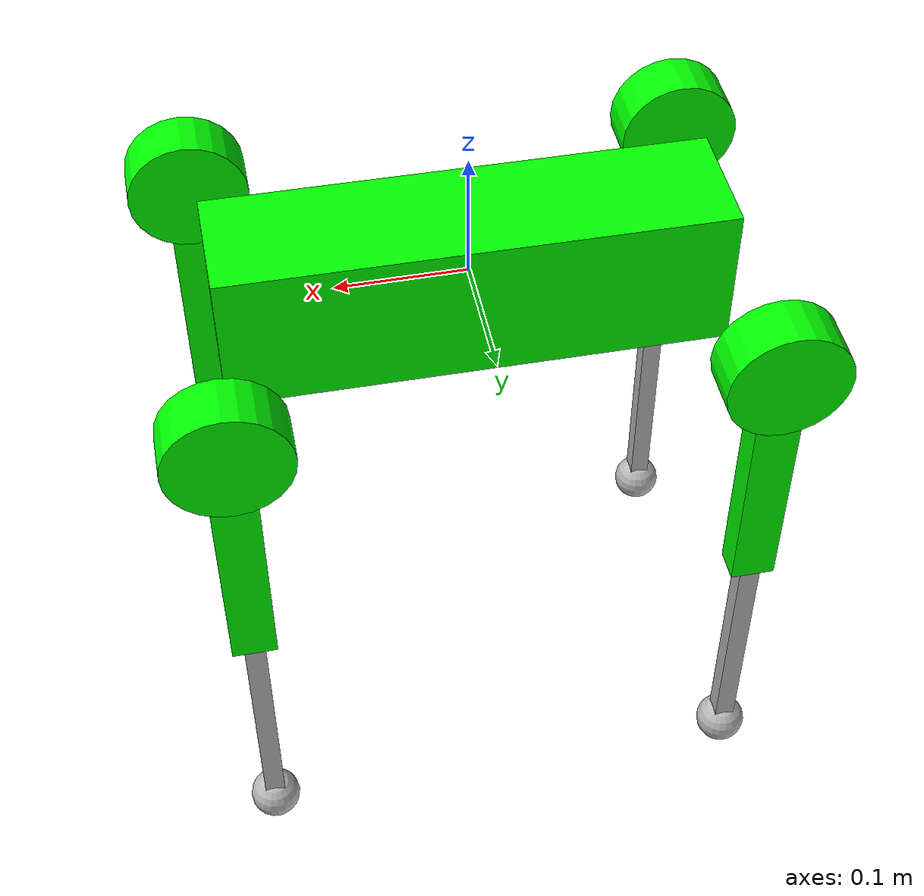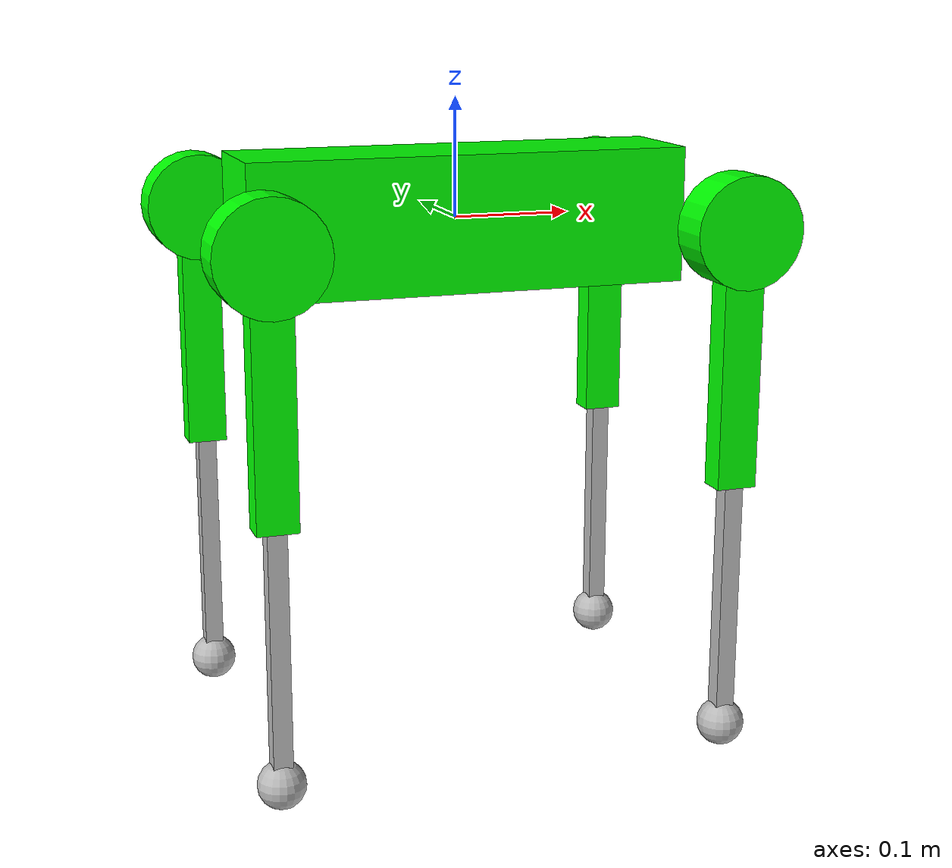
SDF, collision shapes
<sdf version='1.12'>
  <model name='go2'>
    <link name='base'>
      <inertial>
        <pose>0.020076415498763388 -1.1917583649194879e-19 -0.0051027873042044517 0 0 0</pose>
        <mass>7.2780000000000022</mass>
        <inertia>
          <ixx>0.025815203465732739</ixx>
          <ixy>0.00012166</ixy>
          <ixz>0.0015233596262671919</ixz>
          <iyy>0.1030543124481243</iyy>
          <iyz>-3.1199999999999993e-05</iyz>
          <izz>0.1127455974823915</izz>
        </inertia>
      </inertial>
      <collision name='base_fixed_joint_lump__trunk_collision'>
        <pose>0 0 0 0 0 0</pose>
        <geometry>
          <box>
            <size>0.37619999999999998 0.0935 0.114</size>
          </box>
        </geometry>
        <surface>
          <contact>
            <ode>
              <kp>1000000</kp>
              <kd>1</kd>
            </ode>
          </contact>
          <friction>
            <ode>
              <mu>0.20000000000000001</mu>
              <mu2>0.20000000000000001</mu2>
            </ode>
          </friction>
        </surface>
      </collision>
      <collision name='base_fixed_joint_lump__imu_link_collision_1'>
        <pose>0 0 0 0 0 0</pose>
        <geometry>
          <box>
            <size>0.001 0.001 0.001</size>
          </box>
        </geometry>
        <surface>
          <contact>
            <ode/>
          </contact>
          <friction>
            <ode>
              <mu>0.20000000000000001</mu>
              <mu2>0.20000000000000001</mu2>
            </ode>
          </friction>
        </surface>
      </collision>
      <visual name='base_visual'>
        <pose>0 0 0 0 0 0</pose>
        <geometry>
          <box>
            <size>0.001 0.001 0.001</size>
          </box>
        </geometry>
      </visual>
      <visual name='base_fixed_joint_lump__trunk_visual_1'>
        <pose>0 0 0 0 0 0</pose>
        <geometry>
          <mesh>
            <scale>1 1 1</scale>
            <uri>meshes/trunk.dae</uri>
          </mesh>
        </geometry>
      </visual>
      <visual name='base_fixed_joint_lump__FL_hip_rotor_visual_2'>
        <pose>0.11215 0.04675 0 0 1.5707963267948966 0</pose>
        <geometry>
          <cylinder>
            <length>0.02</length>
            <radius>0.035000000000000003</radius>
          </cylinder>
        </geometry>
        <material>
          <diffuse>0 1 0 1</diffuse>
          <ambient>0 1 0 1</ambient>
        </material>
      </visual>
      <visual name='base_fixed_joint_lump__FR_hip_rotor_visual_3'>
        <pose>0.11215 -0.04675 0 0 1.5707963267948966 0</pose>
        <geometry>
          <cylinder>
            <length>0.02</length>
            <radius>0.035000000000000003</radius>
          </cylinder>
        </geometry>
        <material>
          <diffuse>0 1 0 1</diffuse>
          <ambient>0 1 0 1</ambient>
        </material>
      </visual>
      <visual name='base_fixed_joint_lump__RL_hip_rotor_visual_4'>
        <pose>-0.11215 0.04675 0 0 1.5707963267948966 0</pose>
        <geometry>
          <cylinder>
            <length>0.02</length>
            <radius>0.035000000000000003</radius>
          </cylinder>
        </geometry>
        <material>
          <diffuse>0 1 0 1</diffuse>
          <ambient>0 1 0 1</ambient>
        </material>
      </visual>
      <visual name='base_fixed_joint_lump__RR_hip_rotor_visual_5'>
        <pose>-0.11215 -0.04675 0 0 1.5707963267948966 0</pose>
        <geometry>
          <cylinder>
            <length>0.02</length>
            <radius>0.035000000000000003</radius>
          </cylinder>
        </geometry>
        <material>
          <diffuse>0 1 0 1</diffuse>
          <ambient>0 1 0 1</ambient>
        </material>
      </visual>
      <visual name='base_fixed_joint_lump__imu_link_visual_6'>
        <pose>0 0 0 0 0 0</pose>
        <geometry>
          <box>
            <size>0.001 0.001 0.001</size>
          </box>
        </geometry>
      </visual>
      <gravity>true</gravity>
      <gravity>true</gravity>
      <sensor name="imu_sensor" type="imu">
          <always_on>1</always_on>
          <update_rate>200</update_rate>
          <visualize>true</visualize>
          <topic>imu</topic>
      </sensor>
    </link>
    <joint name='FL_hip_joint' type='revolute'>
      <pose relative_to='base'>0.19339999999999999 0.0465 0 0 0 0</pose>
      <parent>base</parent>
      <child>FL_hip</child>
      <axis>
        <xyz>1 0 0</xyz>
        <limit>
          <lower>-1.0471999999999999</lower>
          <upper>1.0471999999999999</upper>
          <effort>23.699999999999999</effort>
          <velocity>30.100000000000001</velocity>
        </limit>
        <dynamics>
          <damping>0</damping>
          <friction>0</friction>
          <spring_reference>0</spring_reference>
          <spring_stiffness>0</spring_stiffness>
        </dynamics>
      </axis>
    </joint>
    <link name='FL_hip'>
      <pose relative_to='FL_hip_joint'>0 0 0 0 0 0</pose>
      <inertial>
        <pose>-0.0047734028683181226 0.00169748370273794 -9.2816166883963517e-05 0 0 0</pose>
        <mass>0.76700000000000002</mass>
        <inertia>
          <ixx>0.00053999151781062584</ixx>
          <ixy>-2.1220993324641449e-06</ixy>
          <ixz>1.0653925501955671e-06</ixz>
          <iyy>0.00099813696478559337</iyy>
          <iyz>-1.4027352647979141e-06</iyz>
          <izz>0.00065828474786205991</izz>
        </inertia>
      </inertial>
      <collision name='FL_hip_collision'>
        <pose>0 0.095500000000000002 0 1.5707963267948959 0 0</pose>
        <geometry>
          <cylinder>
            <length>0.040000000000000001</length>
            <radius>0.045999999999999999</radius>
          </cylinder>
        </geometry>
        <surface>
          <contact>
            <ode/>
          </contact>
          <friction>
            <ode>
              <mu>0.20000000000000001</mu>
              <mu2>0.20000000000000001</mu2>
            </ode>
          </friction>
        </surface>
      </collision>
      <visual name='FL_hip_visual'>
        <pose>0 0 0 0 0 0</pose>
        <geometry>
          <mesh>
            <scale>1 1 1</scale>
            <uri>meshes/hip.dae</uri>
          </mesh>
        </geometry>
      </visual>
      <visual name='FL_hip_fixed_joint_lump__FL_thigh_rotor_visual_1'>
        <pose>0 -0.00014999999999999999 0 1.5707963267948959 0 0</pose>
        <geometry>
          <cylinder>
            <length>0.02</length>
            <radius>0.035000000000000003</radius>
          </cylinder>
        </geometry>
        <material>
          <diffuse>0 1 0 1</diffuse>
          <ambient>0 1 0 1</ambient>
        </material>
      </visual>
    </link>
    <joint name='FL_thigh_joint' type='revolute'>
      <pose relative_to='FL_hip'>0 0.095500000000000002 0 0 0 0</pose>
      <parent>FL_hip</parent>
      <child>FL_thigh</child>
      <axis>
        <xyz>0 1 0</xyz>
        <limit>
          <lower>-1.5708</lower>
          <upper>3.4906999999999999</upper>
          <effort>23.699999999999999</effort>
          <velocity>30.100000000000001</velocity>
        </limit>
        <dynamics>
          <damping>0</damping>
          <friction>0</friction>
          <spring_reference>0</spring_reference>
          <spring_stiffness>0</spring_stiffness>
        </dynamics>
      </axis>
    </joint>
    <link name='FL_thigh'>
      <pose relative_to='FL_thigh_joint'>0 0 0 0 0 0</pose>
      <inertial>
        <pose>-0.003471780821917808 -0.02302074939564867 -0.03035487510072523 0 0 0</pose>
        <mass>1.2410000000000001</mass>
        <inertia>
          <ixx>0.0059963333412087023</ixx>
          <ixy>9.0305334356164388e-05</ixy>
          <ixz>-0.00029910392372602731</ixz>
          <iyy>0.0060013394099700237</iyy>
          <iyz>0.00083515091803384382</iyz>
          <izz>0.0010991471651674461</izz>
        </inertia>
      </inertial>
      <collision name='FL_thigh_collision'>
        <pose>0 0 -0.1065 0 1.5707963267948966 0</pose>
        <geometry>
          <box>
            <size>0.21299999999999999 0.024500000000000001 0.034000000000000002</size>
          </box>
        </geometry>
        <surface>
          <contact>
            <ode>
              <kp>1000000</kp>
              <kd>1</kd>
            </ode>
          </contact>
          <friction>
            <ode>
              <mu>0.20000000000000001</mu>
              <mu2>0.20000000000000001</mu2>
            </ode>
          </friction>
        </surface>
      </collision>
      <visual name='FL_thigh_visual'>
        <pose>0 0 0 0 0 0</pose>
        <geometry>
          <mesh>
            <scale>1 1 1</scale>
            <uri>meshes/thigh.dae</uri>
          </mesh>
        </geometry>
      </visual>
      <visual name='FL_thigh_fixed_joint_lump__FL_calf_rotor_visual_1'>
        <pose>0 -0.032349999999999997 0 1.5707963267948959 0 0</pose>
        <geometry>
          <cylinder>
            <length>0.02</length>
            <radius>0.035000000000000003</radius>
          </cylinder>
        </geometry>
        <material>
          <diffuse>0 1 0 1</diffuse>
          <ambient>0 1 0 1</ambient>
        </material>
      </visual>
      <self_collide>true</self_collide>
    </link>
    <joint name='FL_calf_joint' type='revolute'>
      <pose relative_to='FL_thigh'>0 0 -0.21299999999999999 0 0 0</pose>
      <parent>FL_thigh</parent>
      <child>FL_calf</child>
      <axis>
        <xyz>0 1 0</xyz>
        <limit>
          <lower>-2.7227000000000001</lower>
          <upper>-0.83775999999999995</upper>
          <effort>35.549999999999997</effort>
          <velocity>20.059999999999999</velocity>
        </limit>
        <dynamics>
          <damping>0</damping>
          <friction>0</friction>
          <spring_reference>0</spring_reference>
          <spring_stiffness>0</spring_stiffness>
        </dynamics>
      </axis>
    </joint>
    <link name='FL_calf'>
      <pose relative_to='FL_calf_joint'>0 0 0 0 0 0</pose>
      <inertial>
        <pose>0.0039435514018691586 -0.00070163551401869158 -0.14247663551401871 0 0 0</pose>
        <mass>0.214</mass>
        <inertia>
          <ixx>0.001504318428855141</ixx>
          <ixy>5.7069775700934575e-07</ixy>
          <ixz>-5.9880822429906407e-06</ixz>
          <iyy>0.001525574022878506</iyy>
          <iyz>1.240561682242991e-05</iyz>
          <izz>4.3837685378504683e-05</izz>
        </inertia>
      </inertial>
      <collision name='FL_calf_collision'>
        <pose>0 0 -0.1065 0 1.5707963267948966 0</pose>
        <geometry>
          <box>
            <size>0.21299999999999999 0.016 0.016</size>
          </box>
        </geometry>
        <surface>
          <contact>
            <ode/>
          </contact>
          <friction>
            <ode>
              <mu>0.20000000000000001</mu>
              <mu2>0.20000000000000001</mu2>
            </ode>
          </friction>
        </surface>
      </collision>
      <collision name='FL_calf_fixed_joint_lump__FL_foot_collision_1'>
        <pose>0 0 -0.21299999999999999 0 0 0</pose>
        <geometry>
          <sphere>
            <radius>0.02</radius>
          </sphere>
        </geometry>
        <surface>
          <contact>
            <ode>
              <kp>1000000</kp>
              <kd>1</kd>
            </ode>
          </contact>
          <friction>
            <ode>
              <mu>0.59999999999999998</mu>
              <mu2>0.59999999999999998</mu2>
            </ode>
          </friction>
        </surface>
      </collision>
      <visual name='FL_calf_visual'>
        <pose>0 0 0 0 0 0</pose>
        <geometry>
          <mesh>
            <scale>1 1 1</scale>
            <uri>meshes/calf.dae</uri>
          </mesh>
        </geometry>
      </visual>
      <visual name='FL_calf_fixed_joint_lump__FL_foot_visual_1'>
        <pose>0 0 -0.21299999999999999 0 0 0</pose>
        <geometry>
          <sphere>
            <radius>0.01</radius>
          </sphere>
        </geometry>
      </visual>
      <sensor name='FL_foot_contact' type='contact'>
        <update_rate>100</update_rate>
        <contact>
          <collision>FL_calf_fixed_joint_lump__FL_foot_collision_1</collision>
          <topic>/FL_foot_contact</topic>
        </contact>
      </sensor>
      <self_collide>true</self_collide>
      <self_collide>true</self_collide>
    </link>
    <joint name='FR_hip_joint' type='revolute'>
      <pose relative_to='base'>0.19339999999999999 -0.0465 0 0 0 0</pose>
      <parent>base</parent>
      <child>FR_hip</child>
      <axis>
        <xyz>1 0 0</xyz>
        <limit>
          <lower>-1.0471999999999999</lower>
          <upper>1.0471999999999999</upper>
          <effort>23.699999999999999</effort>
          <velocity>30.100000000000001</velocity>
        </limit>
        <dynamics>
          <damping>0</damping>
          <friction>0</friction>
          <spring_reference>0</spring_reference>
          <spring_stiffness>0</spring_stiffness>
        </dynamics>
      </axis>
    </joint>
    <link name='FR_hip'>
      <pose relative_to='FR_hip_joint'>0 0 0 0 0 0</pose>
      <inertial>
        <pose>-0.0047734028683181226 -0.00169748370273794 -9.2816166883963517e-05 0 0 0</pose>
        <mass>0.76700000000000002</mass>
        <inertia>
          <ixx>0.00053999151781062584</ixx>
          <ixy>2.1220993324641449e-06</ixy>
          <ixz>1.0653925501955671e-06</ixz>
          <iyy>0.00099813696478559337</iyy>
          <iyz>1.4027352647979141e-06</iyz>
          <izz>0.00065828474786205991</izz>
        </inertia>
      </inertial>
      <collision name='FR_hip_collision'>
        <pose>0 -0.095500000000000002 0 1.5707963267948959 0 0</pose>
        <geometry>
          <cylinder>
            <length>0.040000000000000001</length>
            <radius>0.045999999999999999</radius>
          </cylinder>
        </geometry>
        <surface>
          <contact>
            <ode/>
          </contact>
          <friction>
            <ode>
              <mu>0.20000000000000001</mu>
              <mu2>0.20000000000000001</mu2>
            </ode>
          </friction>
        </surface>
      </collision>
      <visual name='FR_hip_visual'>
        <pose>0 0 0 3.1415926535897931 0 0</pose>
        <geometry>
          <mesh>
            <scale>1 1 1</scale>
            <uri>meshes/hip.dae</uri>
          </mesh>
        </geometry>
      </visual>
      <visual name='FR_hip_fixed_joint_lump__FR_thigh_rotor_visual_1'>
        <pose>0 0.00014999999999999999 0 1.5707963267948959 0 0</pose>
        <geometry>
          <cylinder>
            <length>0.02</length>
            <radius>0.035000000000000003</radius>
          </cylinder>
        </geometry>
        <material>
          <diffuse>0 1 0 1</diffuse>
          <ambient>0 1 0 1</ambient>
        </material>
      </visual>
    </link>
    <joint name='FR_thigh_joint' type='revolute'>
      <pose relative_to='FR_hip'>0 -0.095500000000000002 0 0 0 0</pose>
      <parent>FR_hip</parent>
      <child>FR_thigh</child>
      <axis>
        <xyz>0 1 0</xyz>
        <limit>
          <lower>-1.5708</lower>
          <upper>3.4906999999999999</upper>
          <effort>23.699999999999999</effort>
          <velocity>30.100000000000001</velocity>
        </limit>
        <dynamics>
          <damping>0</damping>
          <friction>0</friction>
          <spring_reference>0</spring_reference>
          <spring_stiffness>0</spring_stiffness>
        </dynamics>
      </axis>
    </joint>
    <link name='FR_thigh'>
      <pose relative_to='FR_thigh_joint'>0 0 0 0 0 0</pose>
      <inertial>
        <pose>-0.003471780821917808 0.02302074939564867 -0.03035487510072523 0 0 0</pose>
        <mass>1.2410000000000001</mass>
        <inertia>
          <ixx>0.0059963333412087023</ixx>
          <ixy>-9.0305334356164388e-05</ixy>
          <ixz>-0.00029910392372602731</ixz>
          <iyy>0.0060013394099700237</iyy>
          <iyz>-0.00083515091803384382</iyz>
          <izz>0.0010991471651674461</izz>
        </inertia>
      </inertial>
      <collision name='FR_thigh_collision'>
        <pose>0 0 -0.1065 0 1.5707963267948966 0</pose>
        <geometry>
          <box>
            <size>0.21299999999999999 0.024500000000000001 0.034000000000000002</size>
          </box>
        </geometry>
        <surface>
          <contact>
            <ode>
              <kp>1000000</kp>
              <kd>1</kd>
            </ode>
          </contact>
          <friction>
            <ode>
              <mu>0.20000000000000001</mu>
              <mu2>0.20000000000000001</mu2>
            </ode>
          </friction>
        </surface>
      </collision>
      <visual name='FR_thigh_visual'>
        <pose>0 0 0 0 0 0</pose>
        <geometry>
          <mesh>
            <scale>1 1 1</scale>
            <uri>meshes/thigh_mirror.dae</uri>
          </mesh>
        </geometry>
      </visual>
      <visual name='FR_thigh_fixed_joint_lump__FR_calf_rotor_visual_1'>
        <pose>0 0.032349999999999997 0 1.5707963267948959 0 0</pose>
        <geometry>
          <cylinder>
            <length>0.02</length>
            <radius>0.035000000000000003</radius>
          </cylinder>
        </geometry>
        <material>
          <diffuse>0 1 0 1</diffuse>
          <ambient>0 1 0 1</ambient>
        </material>
      </visual>
      <self_collide>true</self_collide>
    </link>
    <joint name='FR_calf_joint' type='revolute'>
      <pose relative_to='FR_thigh'>0 0 -0.21299999999999999 0 0 0</pose>
      <parent>FR_thigh</parent>
      <child>FR_calf</child>
      <axis>
        <xyz>0 1 0</xyz>
        <limit>
          <lower>-2.7227000000000001</lower>
          <upper>-0.83775999999999995</upper>
          <effort>35.549999999999997</effort>
          <velocity>20.059999999999999</velocity>
        </limit>
        <dynamics>
          <damping>0</damping>
          <friction>0</friction>
          <spring_reference>0</spring_reference>
          <spring_stiffness>0</spring_stiffness>
        </dynamics>
      </axis>
    </joint>
    <link name='FR_calf'>
      <pose relative_to='FR_calf_joint'>0 0 0 0 0 0</pose>
      <inertial>
        <pose>0.0039435514018691586 -0.00070163551401869158 -0.14247663551401871 0 0 0</pose>
        <mass>0.214</mass>
        <inertia>
          <ixx>0.001504318428855141</ixx>
          <ixy>5.7069775700934575e-07</ixy>
          <ixz>-5.9880822429906407e-06</ixz>
          <iyy>0.001525574022878506</iyy>
          <iyz>1.240561682242991e-05</iyz>
          <izz>4.3837685378504683e-05</izz>
        </inertia>
      </inertial>
      <collision name='FR_calf_collision'>
        <pose>0 0 -0.1065 0 1.5707963267948966 0</pose>
        <geometry>
          <box>
            <size>0.21299999999999999 0.016 0.016</size>
          </box>
        </geometry>
        <surface>
          <contact>
            <ode/>
          </contact>
          <friction>
            <ode>
              <mu>0.20000000000000001</mu>
              <mu2>0.20000000000000001</mu2>
            </ode>
          </friction>
        </surface>
      </collision>
      <collision name='FR_calf_fixed_joint_lump__FR_foot_collision_1'>
        <pose>0 0 -0.21299999999999999 0 0 0</pose>
        <geometry>
          <sphere>
            <radius>0.02</radius>
          </sphere>
        </geometry>
        <surface>
          <contact>
            <ode>
              <kp>1000000</kp>
              <kd>1</kd>
            </ode>
          </contact>
          <friction>
            <ode>
              <mu>0.59999999999999998</mu>
              <mu2>0.59999999999999998</mu2>
            </ode>
          </friction>
        </surface>
      </collision>
      <visual name='FR_calf_visual'>
        <pose>0 0 0 0 0 0</pose>
        <geometry>
          <mesh>
            <scale>1 1 1</scale>
            <uri>meshes/calf.dae</uri>
          </mesh>
        </geometry>
      </visual>
      <visual name='FR_calf_fixed_joint_lump__FR_foot_visual_1'>
        <pose>0 0 -0.21299999999999999 0 0 0</pose>
        <geometry>
          <sphere>
            <radius>0.01</radius>
          </sphere>
        </geometry>
      </visual>
      <sensor name='FR_foot_contact' type='contact'>
        <update_rate>100</update_rate>
        <contact>
          <collision>FR_calf_fixed_joint_lump__FR_foot_collision_1</collision>
          <topic>/FR_foot_contact</topic>
        </contact>
      </sensor>
      <self_collide>true</self_collide>
      <self_collide>true</self_collide>
    </link>
    <joint name='RL_hip_joint' type='revolute'>
      <pose relative_to='base'>-0.19339999999999999 0.0465 0 0 0 0</pose>
      <parent>base</parent>
      <child>RL_hip</child>
      <axis>
        <xyz>1 0 0</xyz>
        <limit>
          <lower>-1.0471999999999999</lower>
          <upper>1.0471999999999999</upper>
          <effort>23.699999999999999</effort>
          <velocity>30.100000000000001</velocity>
        </limit>
        <dynamics>
          <damping>0</damping>
          <friction>0</friction>
          <spring_reference>0</spring_reference>
          <spring_stiffness>0</spring_stiffness>
        </dynamics>
      </axis>
    </joint>
    <link name='RL_hip'>
      <pose relative_to='RL_hip_joint'>0 0 0 0 0 0</pose>
      <inertial>
        <pose>0.0047734028683181226 0.00169748370273794 -9.2816166883963517e-05 0 0 0</pose>
        <mass>0.76700000000000002</mass>
        <inertia>
          <ixx>0.00053999151781062584</ixx>
          <ixy>2.1220993324641449e-06</ixy>
          <ixz>-1.0653925501955671e-06</ixz>
          <iyy>0.00099813696478559337</iyy>
          <iyz>-1.4027352647979141e-06</iyz>
          <izz>0.00065828474786205991</izz>
        </inertia>
      </inertial>
      <collision name='RL_hip_collision'>
        <pose>0 0.095500000000000002 0 1.5707963267948959 0 0</pose>
        <geometry>
          <cylinder>
            <length>0.040000000000000001</length>
            <radius>0.045999999999999999</radius>
          </cylinder>
        </geometry>
        <surface>
          <contact>
            <ode/>
          </contact>
          <friction>
            <ode>
              <mu>0.20000000000000001</mu>
              <mu2>0.20000000000000001</mu2>
            </ode>
          </friction>
        </surface>
      </collision>
      <visual name='RL_hip_visual'>
        <pose>0 0 0 3.1415926535897931 1.224646799147353e-16 3.1415926535897931</pose>
        <geometry>
          <mesh>
            <scale>1 1 1</scale>
            <uri>meshes/hip.dae</uri>
          </mesh>
        </geometry>
      </visual>
      <visual name='RL_hip_fixed_joint_lump__RL_thigh_rotor_visual_1'>
        <pose>0 -0.00014999999999999999 0 1.5707963267948959 0 0</pose>
        <geometry>
          <cylinder>
            <length>0.02</length>
            <radius>0.035000000000000003</radius>
          </cylinder>
        </geometry>
        <material>
          <diffuse>0 1 0 1</diffuse>
          <ambient>0 1 0 1</ambient>
        </material>
      </visual>
    </link>
    <joint name='RL_thigh_joint' type='revolute'>
      <pose relative_to='RL_hip'>0 0.095500000000000002 0 0 0 0</pose>
      <parent>RL_hip</parent>
      <child>RL_thigh</child>
      <axis>
        <xyz>0 1 0</xyz>
        <limit>
          <lower>-1.5708</lower>
          <upper>3.4906999999999999</upper>
          <effort>23.699999999999999</effort>
          <velocity>30.100000000000001</velocity>
        </limit>
        <dynamics>
          <damping>0</damping>
          <friction>0</friction>
          <spring_reference>0</spring_reference>
          <spring_stiffness>0</spring_stiffness>
        </dynamics>
      </axis>
    </joint>
    <link name='RL_thigh'>
      <pose relative_to='RL_thigh_joint'>0 0 0 0 0 0</pose>
      <inertial>
        <pose>-0.003471780821917808 -0.02302074939564867 -0.03035487510072523 0 0 0</pose>
        <mass>1.2410000000000001</mass>
        <inertia>
          <ixx>0.0059963333412087023</ixx>
          <ixy>9.0305334356164388e-05</ixy>
          <ixz>-0.00029910392372602731</ixz>
          <iyy>0.0060013394099700237</iyy>
          <iyz>0.00083515091803384382</iyz>
          <izz>0.0010991471651674461</izz>
        </inertia>
      </inertial>
      <collision name='RL_thigh_collision'>
        <pose>0 0 -0.1065 0 1.5707963267948966 0</pose>
        <geometry>
          <box>
            <size>0.21299999999999999 0.024500000000000001 0.034000000000000002</size>
          </box>
        </geometry>
        <surface>
          <contact>
            <ode>
              <kp>1000000</kp>
              <kd>1</kd>
            </ode>
          </contact>
          <friction>
            <ode>
              <mu>0.20000000000000001</mu>
              <mu2>0.20000000000000001</mu2>
            </ode>
          </friction>
        </surface>
      </collision>
      <visual name='RL_thigh_visual'>
        <pose>0 0 0 0 0 0</pose>
        <geometry>
          <mesh>
            <scale>1 1 1</scale>
            <uri>meshes/thigh.dae</uri>
          </mesh>
        </geometry>
      </visual>
      <visual name='RL_thigh_fixed_joint_lump__RL_calf_rotor_visual_1'>
        <pose>0 -0.032349999999999997 0 1.5707963267948959 0 0</pose>
        <geometry>
          <cylinder>
            <length>0.02</length>
            <radius>0.035000000000000003</radius>
          </cylinder>
        </geometry>
        <material>
          <diffuse>0 1 0 1</diffuse>
          <ambient>0 1 0 1</ambient>
        </material>
      </visual>
      <self_collide>true</self_collide>
    </link>
    <joint name='RL_calf_joint' type='revolute'>
      <pose relative_to='RL_thigh'>0 0 -0.21299999999999999 0 0 0</pose>
      <parent>RL_thigh</parent>
      <child>RL_calf</child>
      <axis>
        <xyz>0 1 0</xyz>
        <limit>
          <lower>-2.7227000000000001</lower>
          <upper>-0.83775999999999995</upper>
          <effort>35.549999999999997</effort>
          <velocity>20.059999999999999</velocity>
        </limit>
        <dynamics>
          <damping>0</damping>
          <friction>0</friction>
          <spring_reference>0</spring_reference>
          <spring_stiffness>0</spring_stiffness>
        </dynamics>
      </axis>
    </joint>
    <link name='RL_calf'>
      <pose relative_to='RL_calf_joint'>0 0 0 0 0 0</pose>
      <inertial>
        <pose>0.0039435514018691586 -0.00070163551401869158 -0.14247663551401871 0 0 0</pose>
        <mass>0.214</mass>
        <inertia>
          <ixx>0.001504318428855141</ixx>
          <ixy>5.7069775700934575e-07</ixy>
          <ixz>-5.9880822429906407e-06</ixz>
          <iyy>0.001525574022878506</iyy>
          <iyz>1.240561682242991e-05</iyz>
          <izz>4.3837685378504683e-05</izz>
        </inertia>
      </inertial>
      <collision name='RL_calf_collision'>
        <pose>0 0 -0.1065 0 1.5707963267948966 0</pose>
        <geometry>
          <box>
            <size>0.21299999999999999 0.016 0.016</size>
          </box>
        </geometry>
        <surface>
          <contact>
            <ode/>
          </contact>
          <friction>
            <ode>
              <mu>0.20000000000000001</mu>
              <mu2>0.20000000000000001</mu2>
            </ode>
          </friction>
        </surface>
      </collision>
      <collision name='RL_calf_fixed_joint_lump__RL_foot_collision_1'>
        <pose>0 0 -0.21299999999999999 0 0 0</pose>
        <geometry>
          <sphere>
            <radius>0.02</radius>
          </sphere>
        </geometry>
        <surface>
          <contact>
            <ode>
              <kp>1000000</kp>
              <kd>1</kd>
            </ode>
          </contact>
          <friction>
            <ode>
              <mu>0.59999999999999998</mu>
              <mu2>0.59999999999999998</mu2>
            </ode>
          </friction>
        </surface>
      </collision>
      <visual name='RL_calf_visual'>
        <pose>0 0 0 0 0 0</pose>
        <geometry>
          <mesh>
            <scale>1 1 1</scale>
            <uri>meshes/calf.dae</uri>
          </mesh>
        </geometry>
      </visual>
      <visual name='RL_calf_fixed_joint_lump__RL_foot_visual_1'>
        <pose>0 0 -0.21299999999999999 0 0 0</pose>
        <geometry>
          <sphere>
            <radius>0.01</radius>
          </sphere>
        </geometry>
      </visual>
      <sensor name='RL_foot_contact' type='contact'>
        <update_rate>100</update_rate>
        <contact>
          <collision>RL_calf_fixed_joint_lump__RL_foot_collision_1</collision>
          <topic>/RL_foot_contact</topic>
        </contact>
      </sensor>
      <self_collide>true</self_collide>
      <self_collide>true</self_collide>
    </link>
    <joint name='RR_hip_joint' type='revolute'>
      <pose relative_to='base'>-0.19339999999999999 -0.0465 0 0 0 0</pose>
      <parent>base</parent>
      <child>RR_hip</child>
      <axis>
        <xyz>1 0 0</xyz>
        <limit>
          <lower>-1.0471999999999999</lower>
          <upper>1.0471999999999999</upper>
          <effort>23.699999999999999</effort>
          <velocity>30.100000000000001</velocity>
        </limit>
        <dynamics>
          <damping>0</damping>
          <friction>0</friction>
          <spring_reference>0</spring_reference>
          <spring_stiffness>0</spring_stiffness>
        </dynamics>
      </axis>
    </joint>
    <link name='RR_hip'>
      <pose relative_to='RR_hip_joint'>0 0 0 0 0 0</pose>
      <inertial>
        <pose>0.0047734028683181226 -0.00169748370273794 -9.2816166883963517e-05 0 0 0</pose>
        <mass>0.76700000000000002</mass>
        <inertia>
          <ixx>0.00053999151781062584</ixx>
          <ixy>-2.1220993324641449e-06</ixy>
          <ixz>-1.0653925501955671e-06</ixz>
          <iyy>0.00099813696478559337</iyy>
          <iyz>1.4027352647979141e-06</iyz>
          <izz>0.00065828474786205991</izz>
        </inertia>
      </inertial>
      <collision name='RR_hip_collision'>
        <pose>0 -0.095500000000000002 0 1.5707963267948959 0 0</pose>
        <geometry>
          <cylinder>
            <length>0.040000000000000001</length>
            <radius>0.045999999999999999</radius>
          </cylinder>
        </geometry>
        <surface>
          <contact>
            <ode/>
          </contact>
          <friction>
            <ode>
              <mu>0.20000000000000001</mu>
              <mu2>0.20000000000000001</mu2>
            </ode>
          </friction>
        </surface>
      </collision>
      <visual name='RR_hip_visual'>
        <pose>0 0 0 -1.224646799147353e-16 1.224646799147353e-16 3.1415926535897931</pose>
        <geometry>
          <mesh>
            <scale>1 1 1</scale>
            <uri>meshes/hip.dae</uri>
          </mesh>
        </geometry>
      </visual>
      <visual name='RR_hip_fixed_joint_lump__RR_thigh_rotor_visual_1'>
        <pose>0 0.00014999999999999999 0 1.5707963267948959 0 0</pose>
        <geometry>
          <cylinder>
            <length>0.02</length>
            <radius>0.035000000000000003</radius>
          </cylinder>
        </geometry>
        <material>
          <diffuse>0 1 0 1</diffuse>
          <ambient>0 1 0 1</ambient>
        </material>
      </visual>
    </link>
    <joint name='RR_thigh_joint' type='revolute'>
      <pose relative_to='RR_hip'>0 -0.095500000000000002 0 0 0 0</pose>
      <parent>RR_hip</parent>
      <child>RR_thigh</child>
      <axis>
        <xyz>0 1 0</xyz>
        <limit>
          <lower>-1.5708</lower>
          <upper>3.4906999999999999</upper>
          <effort>23.699999999999999</effort>
          <velocity>30.100000000000001</velocity>
        </limit>
        <dynamics>
          <damping>0</damping>
          <friction>0</friction>
          <spring_reference>0</spring_reference>
          <spring_stiffness>0</spring_stiffness>
        </dynamics>
      </axis>
    </joint>
    <link name='RR_thigh'>
      <pose relative_to='RR_thigh_joint'>0 0 0 0 0 0</pose>
      <inertial>
        <pose>-0.003471780821917808 0.02302074939564867 -0.03035487510072523 0 0 0</pose>
        <mass>1.2410000000000001</mass>
        <inertia>
          <ixx>0.0059963333412087023</ixx>
          <ixy>-9.0305334356164388e-05</ixy>
          <ixz>-0.00029910392372602731</ixz>
          <iyy>0.0060013394099700237</iyy>
          <iyz>-0.00083515091803384382</iyz>
          <izz>0.0010991471651674461</izz>
        </inertia>
      </inertial>
      <collision name='RR_thigh_collision'>
        <pose>0 0 -0.1065 0 1.5707963267948966 0</pose>
        <geometry>
          <box>
            <size>0.21299999999999999 0.024500000000000001 0.034000000000000002</size>
          </box>
        </geometry>
        <surface>
          <contact>
            <ode>
              <kp>1000000</kp>
              <kd>1</kd>
            </ode>
          </contact>
          <friction>
            <ode>
              <mu>0.20000000000000001</mu>
              <mu2>0.20000000000000001</mu2>
            </ode>
          </friction>
        </surface>
      </collision>
      <visual name='RR_thigh_visual'>
        <pose>0 0 0 0 0 0</pose>
        <geometry>
          <mesh>
            <scale>1 1 1</scale>
            <uri>meshes/thigh_mirror.dae</uri>
          </mesh>
        </geometry>
      </visual>
      <visual name='RR_thigh_fixed_joint_lump__RR_calf_rotor_visual_1'>
        <pose>0 0.032349999999999997 0 1.5707963267948959 0 0</pose>
        <geometry>
          <cylinder>
            <length>0.02</length>
            <radius>0.035000000000000003</radius>
          </cylinder>
        </geometry>
        <material>
          <diffuse>0 1 0 1</diffuse>
          <ambient>0 1 0 1</ambient>
        </material>
      </visual>
      <self_collide>true</self_collide>
    </link>
    <joint name='RR_calf_joint' type='revolute'>
      <pose relative_to='RR_thigh'>0 0 -0.21299999999999999 0 0 0</pose>
      <parent>RR_thigh</parent>
      <child>RR_calf</child>
      <axis>
        <xyz>0 1 0</xyz>
        <limit>
          <lower>-2.7227000000000001</lower>
          <upper>-0.83775999999999995</upper>
          <effort>35.549999999999997</effort>
          <velocity>20.059999999999999</velocity>
        </limit>
        <dynamics>
          <damping>0</damping>
          <friction>0</friction>
          <spring_reference>0</spring_reference>
          <spring_stiffness>0</spring_stiffness>
        </dynamics>
      </axis>
    </joint>
    <link name='RR_calf'>
      <pose relative_to='RR_calf_joint'>0 0 0 0 0 0</pose>
      <inertial>
        <pose>0.0039435514018691586 -0.00070163551401869158 -0.14247663551401871 0 0 0</pose>
        <mass>0.214</mass>
        <inertia>
          <ixx>0.001504318428855141</ixx>
          <ixy>5.7069775700934575e-07</ixy>
          <ixz>-5.9880822429906407e-06</ixz>
          <iyy>0.001525574022878506</iyy>
          <iyz>1.240561682242991e-05</iyz>
          <izz>4.3837685378504683e-05</izz>
        </inertia>
      </inertial>
      <collision name='RR_calf_collision'>
        <pose>0 0 -0.1065 0 1.5707963267948966 0</pose>
        <geometry>
          <box>
            <size>0.21299999999999999 0.016 0.016</size>
          </box>
        </geometry>
        <surface>
          <contact>
            <ode/>
          </contact>
          <friction>
            <ode>
              <mu>0.20000000000000001</mu>
              <mu2>0.20000000000000001</mu2>
            </ode>
          </friction>
        </surface>
      </collision>
      <collision name='RR_calf_fixed_joint_lump__RR_foot_collision_1'>
        <pose>0 0 -0.21299999999999999 0 0 0</pose>
        <geometry>
          <sphere>
            <radius>0.02</radius>
          </sphere>
        </geometry>
        <surface>
          <contact>
            <ode>
              <kp>1000000</kp>
              <kd>1</kd>
            </ode>
          </contact>
          <friction>
            <ode>
              <mu>0.59999999999999998</mu>
              <mu2>0.59999999999999998</mu2>
            </ode>
          </friction>
        </surface>
      </collision>
      <visual name='RR_calf_visual'>
        <pose>0 0 0 0 0 0</pose>
        <geometry>
          <mesh>
            <scale>1 1 1</scale>
            <uri>meshes/calf.dae</uri>
          </mesh>
        </geometry>
      </visual>
      <visual name='RR_calf_fixed_joint_lump__RR_foot_visual_1'>
        <pose>0 0 -0.21299999999999999 0 0 0</pose>
        <geometry>
          <sphere>
            <radius>0.01</radius>
          </sphere>
        </geometry>
      </visual>
      <sensor name='RR_foot_contact' type='contact'>
        <update_rate>100</update_rate>
        <contact>
          <collision>RR_calf_fixed_joint_lump__RR_foot_collision_1</collision>
          <topic>/RR_foot_contact</topic>
        </contact>
      </sensor>
      <self_collide>true</self_collide>
      <self_collide>true</self_collide>
    </link>

    <!-- Gazebo Sim plugins -->

    <!-- Joint State Publisher: publishes joint states -->
    <plugin filename="gz-sim-joint-state-publisher-system"
            name="gz::sim::systems::JointStatePublisher">
      <topic>/go2/joint_states</topic>
    </plugin>

    <!-- Apply Joint Force: one plugin instance per joint -->
    <plugin filename="gz-sim-apply-joint-force-system" name="gz::sim::systems::ApplyJointForce">
      <joint_name>FL_hip_joint</joint_name>
    </plugin>
    <plugin filename="gz-sim-apply-joint-force-system" name="gz::sim::systems::ApplyJointForce">
      <joint_name>FL_thigh_joint</joint_name>
    </plugin>
    <plugin filename="gz-sim-apply-joint-force-system" name="gz::sim::systems::ApplyJointForce">
      <joint_name>FL_calf_joint</joint_name>
    </plugin>
    <plugin filename="gz-sim-apply-joint-force-system" name="gz::sim::systems::ApplyJointForce">
      <joint_name>FR_hip_joint</joint_name>
    </plugin>
    <plugin filename="gz-sim-apply-joint-force-system" name="gz::sim::systems::ApplyJointForce">
      <joint_name>FR_thigh_joint</joint_name>
    </plugin>
    <plugin filename="gz-sim-apply-joint-force-system" name="gz::sim::systems::ApplyJointForce">
      <joint_name>FR_calf_joint</joint_name>
    </plugin>
    <plugin filename="gz-sim-apply-joint-force-system" name="gz::sim::systems::ApplyJointForce">
      <joint_name>RL_hip_joint</joint_name>
    </plugin>
    <plugin filename="gz-sim-apply-joint-force-system" name="gz::sim::systems::ApplyJointForce">
      <joint_name>RL_thigh_joint</joint_name>
    </plugin>
    <plugin filename="gz-sim-apply-joint-force-system" name="gz::sim::systems::ApplyJointForce">
      <joint_name>RL_calf_joint</joint_name>
    </plugin>
    <plugin filename="gz-sim-apply-joint-force-system" name="gz::sim::systems::ApplyJointForce">
      <joint_name>RR_hip_joint</joint_name>
    </plugin>
    <plugin filename="gz-sim-apply-joint-force-system" name="gz::sim::systems::ApplyJointForce">
      <joint_name>RR_thigh_joint</joint_name>
    </plugin>
    <plugin filename="gz-sim-apply-joint-force-system" name="gz::sim::systems::ApplyJointForce">
      <joint_name>RR_calf_joint</joint_name>
    </plugin>

    <!-- Apply link wrench for external forces (optional) -->

    <frame name='FL_hip_rotor_joint' attached_to='trunk'>
      <pose>0.11215 0.04675 0 0 0 0</pose>
    </frame>
    <frame name='FL_hip_rotor' attached_to='FL_hip_rotor_joint'>
      <pose>0 0 0 0 0 0</pose>
    </frame>
    <frame name='FR_hip_rotor_joint' attached_to='trunk'>
      <pose>0.11215 -0.04675 0 0 0 0</pose>
    </frame>
    <frame name='FR_hip_rotor' attached_to='FR_hip_rotor_joint'>
      <pose>0 0 0 0 0 0</pose>
    </frame>
    <frame name='RL_hip_rotor_joint' attached_to='trunk'>
      <pose>-0.11215 0.04675 0 0 0 0</pose>
    </frame>
    <frame name='RL_hip_rotor' attached_to='RL_hip_rotor_joint'>
      <pose>0 0 0 0 0 0</pose>
    </frame>
    <frame name='RR_hip_rotor_joint' attached_to='trunk'>
      <pose>-0.11215 -0.04675 0 0 0 0</pose>
    </frame>
    <frame name='RR_hip_rotor' attached_to='RR_hip_rotor_joint'>
      <pose>0 0 0 0 0 0</pose>
    </frame>
    <frame name='front_camera_joint' attached_to='trunk'>
      <pose>0.32715 -3.0000000000000001e-05 0.042970000000000001 0 0 0</pose>
    </frame>
    <frame name='front_camera' attached_to='front_camera_joint'>
      <pose>0 0 0 0 0 0</pose>
    </frame>
    <frame name='imu_joint' attached_to='trunk'>
      <pose>0 0 0 0 0 0</pose>
    </frame>
    <frame name='imu_link' attached_to='imu_joint'>
      <pose>0 0 0 0 0 0</pose>
    </frame>
    <frame name='floating_base' attached_to='base'>
      <pose>0 0 0 0 0 0</pose>
    </frame>
    <frame name='trunk' attached_to='floating_base'>
      <pose>0 0 0 0 0 0</pose>
    </frame>
    <frame name='FL_thigh_rotor_joint' attached_to='FL_hip'>
      <pose>0 -0.00014999999999999999 0 0 0 0</pose>
    </frame>
    <frame name='FL_thigh_rotor' attached_to='FL_thigh_rotor_joint'>
      <pose>0 0 0 0 0 0</pose>
    </frame>
    <frame name='FL_calf_rotor_joint' attached_to='FL_thigh'>
      <pose>0 -0.032349999999999997 0 0 0 0</pose>
    </frame>
    <frame name='FL_calf_rotor' attached_to='FL_calf_rotor_joint'>
      <pose>0 0 0 0 0 0</pose>
    </frame>
    <frame name='FL_foot_fixed' attached_to='FL_calf'>
      <pose>0 0 -0.21299999999999999 0 0 0</pose>
    </frame>
    <frame name='FL_foot' attached_to='FL_foot_fixed'>
      <pose>0 0 0 0 0 0</pose>
    </frame>
    <frame name='FR_thigh_rotor_joint' attached_to='FR_hip'>
      <pose>0 0.00014999999999999999 0 0 0 0</pose>
    </frame>
    <frame name='FR_thigh_rotor' attached_to='FR_thigh_rotor_joint'>
      <pose>0 0 0 0 0 0</pose>
    </frame>
    <frame name='FR_calf_rotor_joint' attached_to='FR_thigh'>
      <pose>0 0.032349999999999997 0 0 0 0</pose>
    </frame>
    <frame name='FR_calf_rotor' attached_to='FR_calf_rotor_joint'>
      <pose>0 0 0 0 0 0</pose>
    </frame>
    <frame name='FR_foot_fixed' attached_to='FR_calf'>
      <pose>0 0 -0.21299999999999999 0 0 0</pose>
    </frame>
    <frame name='FR_foot' attached_to='FR_foot_fixed'>
      <pose>0 0 0 0 0 0</pose>
    </frame>
    <frame name='RL_thigh_rotor_joint' attached_to='RL_hip'>
      <pose>0 -0.00014999999999999999 0 0 0 0</pose>
    </frame>
    <frame name='RL_thigh_rotor' attached_to='RL_thigh_rotor_joint'>
      <pose>0 0 0 0 0 0</pose>
    </frame>
    <frame name='RL_calf_rotor_joint' attached_to='RL_thigh'>
      <pose>0 -0.032349999999999997 0 0 0 0</pose>
    </frame>
    <frame name='RL_calf_rotor' attached_to='RL_calf_rotor_joint'>
      <pose>0 0 0 0 0 0</pose>
    </frame>
    <frame name='RL_foot_fixed' attached_to='RL_calf'>
      <pose>0 0 -0.21299999999999999 0 0 0</pose>
    </frame>
    <frame name='RL_foot' attached_to='RL_foot_fixed'>
      <pose>0 0 0 0 0 0</pose>
    </frame>
    <frame name='RR_thigh_rotor_joint' attached_to='RR_hip'>
      <pose>0 0.00014999999999999999 0 0 0 0</pose>
    </frame>
    <frame name='RR_thigh_rotor' attached_to='RR_thigh_rotor_joint'>
      <pose>0 0 0 0 0 0</pose>
    </frame>
    <frame name='RR_calf_rotor_joint' attached_to='RR_thigh'>
      <pose>0 0.032349999999999997 0 0 0 0</pose>
    </frame>
    <frame name='RR_calf_rotor' attached_to='RR_calf_rotor_joint'>
      <pose>0 0 0 0 0 0</pose>
    </frame>
    <frame name='RR_foot_fixed' attached_to='RR_calf'>
      <pose>0 0 -0.21299999999999999 0 0 0</pose>
    </frame>
    <frame name='RR_foot' attached_to='RR_foot_fixed'>
      <pose>0 0 0 0 0 0</pose>
    </frame>
  </model>
</sdf>
